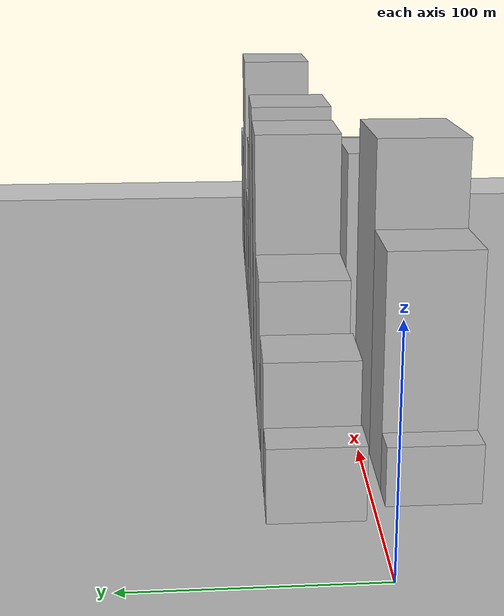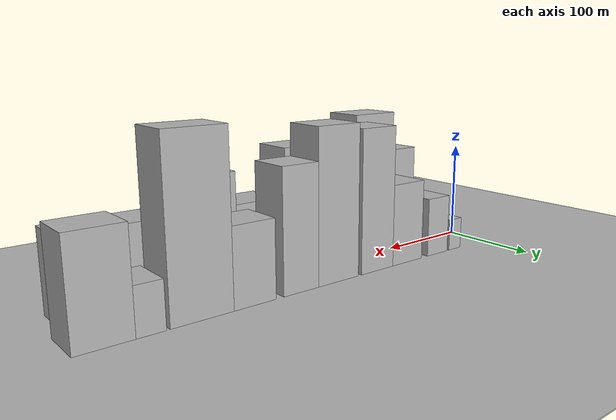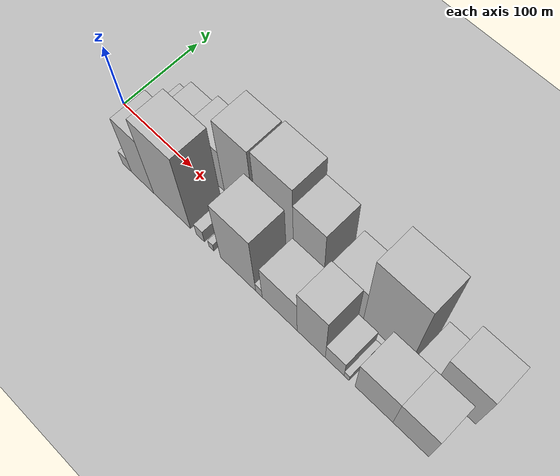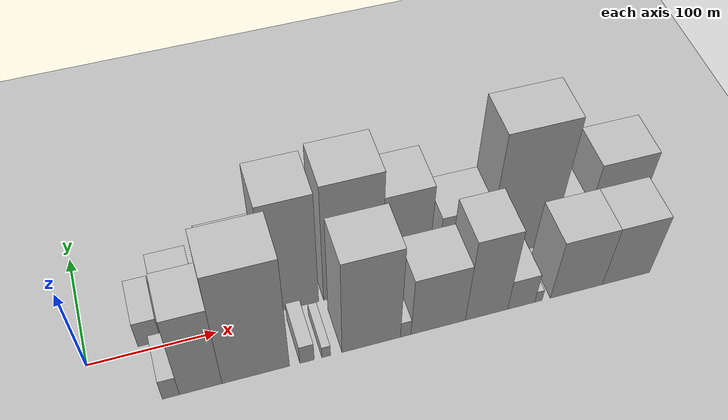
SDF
<?xml version="1.0" encoding="utf-8"?>

<sdf version="1.6">

   <world name="default">

      <gui fullscreen="0">

         <camera name="user_camera">

            <pose>-15 0 4.57585 0 0 0</pose>

            <view_controller>orbit</view_controller>

         </camera>

      </gui>

      <scene>

         <sky>

           <clouds>

             <speed>12</speed>

           </clouds>

         </sky>

         <ambient>0.4 0.4 0.4 1</ambient>

         <background>0.7 0.7 0.7 1</background>

         <shadows>1</shadows>

      </scene>

      <gravity>0 0 -9.8066</gravity>

      <magnetic_field>6e-06 2.3e-05 -4.2e-05</magnetic_field>

      <physics default="0" name="default_physics" type="ode">

         <ode>

            <solver>

               <type>quick</type>

               <iters>10</iters>

               <sor>1.0</sor>

               <use_dynamic_moi_rescaling>0</use_dynamic_moi_rescaling>

            </solver>

            <constraints>

               <cfm>0</cfm>

               <erp>0.2</erp>

               <contact_max_correcting_vel>100</contact_max_correcting_vel>

               <contact_surface_layer>0.001</contact_surface_layer>

            </constraints>

         </ode>

         <max_step_size>0.004</max_step_size>

         <real_time_factor>1</real_time_factor>

         <real_time_update_rate>250</real_time_update_rate>

      </physics>

      <light name="sun" type="directional">

         <cast_shadows>1</cast_shadows>

         <pose>0 0 10 0 0 0</pose>

         <diffuse>0.8 0.8 0.8 1</diffuse>

         <specular>0.2 0.2 0.2 1</specular>

         <attenuation>

            <range>1000</range>

            <constant>0.9</constant>

            <linear>0.01</linear>

            <quadratic>0.001</quadratic>

         </attenuation>

         <direction>-0.5 0.1 -0.9</direction>

      </light>

      <include>

         <name>ground_plane_1</name>

         <uri>model://HANNAS_ground_plane</uri>

         <pose>0 0 0  0 0 0</pose>

      </include>

      <include>

         <name>ground_plane_2</name>

         <uri>model://HANNAS_ground_plane</uri>

         <pose>100 0 0  0 0 0</pose>

      </include>

      <model name="building_1">

         <static>1</static>

         <pose frame="">49.0058 24.5000 0 0.000000 0.000000 1.570796</pose>

         <link name="link">

            <pose frame="">0 0 16.50 0 0 0</pose>

            <collision name="collision">

               <geometry>

                  <box>

                     <size>40.0000 18.0115 33.0000</size>

                  </box>

               </geometry>

               <max_contacts>10</max_contacts>

               <surface>

                  <contact>

                     <ode/>

                  </contact>

                  <bounce/>

                  <friction>

                     <torsional>

                        <ode/>

                     </torsional>

                     <ode/>

                  </friction>

               </surface>

            </collision>

            <visual name="visual">

               <cast_shadows>0</cast_shadows>

               <geometry>

                  <box>

                     <size>40.0000 18.0115 33.0000</size>

                  </box>

               </geometry>

               <material>

                  <script>

                     <uri>model://HANNAS_wall/materials/scripts</uri>

                     <uri>model://HANNAS_wall/materials/textures</uri>

                     <name>vrc/HANNAS_wall</name>

                  </script>

               </material>

            </visual>

            <self_collide>0</self_collide>

            <enable_wind>0</enable_wind>

            <kinematic>0</kinematic>

         </link>

      </model>

      <model name="building_2">

         <static>1</static>

         <pose frame="">76.2000 24.5000 0 0.000000 0.000000 1.570796</pose>

         <link name="link">

            <pose frame="">0 0 30.00 0 0 0</pose>

            <collision name="collision">

               <geometry>

                  <box>

                     <size>40.0000 30.3770 60.0000</size>

                  </box>

               </geometry>

               <max_contacts>10</max_contacts>

               <surface>

                  <contact>

                     <ode/>

                  </contact>

                  <bounce/>

                  <friction>

                     <torsional>

                        <ode/>

                     </torsional>

                     <ode/>

                  </friction>

               </surface>

            </collision>

            <visual name="visual">

               <cast_shadows>0</cast_shadows>

               <geometry>

                  <box>

                     <size>40.0000 30.3770 60.0000</size>

                  </box>

               </geometry>

               <material>

                  <script>

                     <uri>model://HANNAS_wall/materials/scripts</uri>

                     <uri>model://HANNAS_wall/materials/textures</uri>

                     <name>vrc/HANNAS_wall</name>

                  </script>

               </material>

            </visual>

            <self_collide>0</self_collide>

            <enable_wind>0</enable_wind>

            <kinematic>0</kinematic>

         </link>

      </model>

      <model name="building_3">

         <static>1</static>

         <pose frame="">120.9270 24.5000 0 0.000000 0.000000 1.570796</pose>

         <link name="link">

            <pose frame="">0 0 40.50 0 0 0</pose>

            <collision name="collision">

               <geometry>

                  <box>

                     <size>40.0000 41.0769 81.0000</size>

                  </box>

               </geometry>

               <max_contacts>10</max_contacts>

               <surface>

                  <contact>

                     <ode/>

                  </contact>

                  <bounce/>

                  <friction>

                     <torsional>

                        <ode/>

                     </torsional>

                     <ode/>

                  </friction>

               </surface>

            </collision>

            <visual name="visual">

               <cast_shadows>0</cast_shadows>

               <geometry>

                  <box>

                     <size>40.0000 41.0769 81.0000</size>

                  </box>

               </geometry>

               <material>

                  <script>

                     <uri>model://HANNAS_wall/materials/scripts</uri>

                     <uri>model://HANNAS_wall/materials/textures</uri>

                     <name>vrc/HANNAS_wall</name>

                  </script>

               </material>

            </visual>

            <self_collide>0</self_collide>

            <enable_wind>0</enable_wind>

            <kinematic>0</kinematic>

         </link>

      </model>

      <model name="building_4">

         <static>1</static>

         <pose frame="">162.2390 24.5000 0 0.000000 0.000000 1.570796</pose>

         <link name="link">

            <pose frame="">0 0 69.00 0 0 0</pose>

            <collision name="collision">

               <geometry>

                  <box>

                     <size>40.0000 41.5473 138.0000</size>

                  </box>

               </geometry>

               <max_contacts>10</max_contacts>

               <surface>

                  <contact>

                     <ode/>

                  </contact>

                  <bounce/>

                  <friction>

                     <torsional>

                        <ode/>

                     </torsional>

                     <ode/>

                  </friction>

               </surface>

            </collision>

            <visual name="visual">

               <cast_shadows>0</cast_shadows>

               <geometry>

                  <box>

                     <size>40.0000 41.5473 138.0000</size>

                  </box>

               </geometry>

               <material>

                  <script>

                     <uri>model://HANNAS_wall/materials/scripts</uri>

                     <uri>model://HANNAS_wall/materials/textures</uri>

                     <name>vrc/HANNAS_wall</name>

                  </script>

               </material>

            </visual>

            <self_collide>0</self_collide>

            <enable_wind>0</enable_wind>

            <kinematic>0</kinematic>

         </link>

      </model>

      <model name="building_5">

         <static>1</static>

         <pose frame="">210.8646 24.5000 0 0.000000 0.000000 1.570796</pose>

         <link name="link">

            <pose frame="">0 0 72.00 0 0 0</pose>

            <collision name="collision">

               <geometry>

                  <box>

                     <size>40.0000 47.7039 144.0000</size>

                  </box>

               </geometry>

               <max_contacts>10</max_contacts>

               <surface>

                  <contact>

                     <ode/>

                  </contact>

                  <bounce/>

                  <friction>

                     <torsional>

                        <ode/>

                     </torsional>

                     <ode/>

                  </friction>

               </surface>

            </collision>

            <visual name="visual">

               <cast_shadows>0</cast_shadows>

               <geometry>

                  <box>

                     <size>40.0000 47.7039 144.0000</size>

                  </box>

               </geometry>

               <material>

                  <script>

                     <uri>model://HANNAS_wall/materials/scripts</uri>

                     <uri>model://HANNAS_wall/materials/textures</uri>

                     <name>vrc/HANNAS_wall</name>

                  </script>

               </material>

            </visual>

            <self_collide>0</self_collide>

            <enable_wind>0</enable_wind>

            <kinematic>0</kinematic>

         </link>

      </model>

      <model name="building_6">

         <static>1</static>

         <pose frame="">253.9870 24.5000 0 0.000000 0.000000 1.570796</pose>

         <link name="link">

            <pose frame="">0 0 57.00 0 0 0</pose>

            <collision name="collision">

               <geometry>

                  <box>

                     <size>40.0000 38.5410 114.0000</size>

                  </box>

               </geometry>

               <max_contacts>10</max_contacts>

               <surface>

                  <contact>

                     <ode/>

                  </contact>

                  <bounce/>

                  <friction>

                     <torsional>

                        <ode/>

                     </torsional>

                     <ode/>

                  </friction>

               </surface>

            </collision>

            <visual name="visual">

               <cast_shadows>0</cast_shadows>

               <geometry>

                  <box>

                     <size>40.0000 38.5410 114.0000</size>

                  </box>

               </geometry>

               <material>

                  <script>

                     <uri>model://HANNAS_wall/materials/scripts</uri>

                     <uri>model://HANNAS_wall/materials/textures</uri>

                     <name>vrc/HANNAS_wall</name>

                  </script>

               </material>

            </visual>

            <self_collide>0</self_collide>

            <enable_wind>0</enable_wind>

            <kinematic>0</kinematic>

         </link>

      </model>

      <model name="building_7">

         <static>1</static>

         <pose frame="">302.1869 24.5000 0 0.000000 0.000000 1.570796</pose>

         <link name="link">

            <pose frame="">0 0 36.00 0 0 0</pose>

            <collision name="collision">

               <geometry>

                  <box>

                     <size>40.0000 41.8587 72.0000</size>

                  </box>

               </geometry>

               <max_contacts>10</max_contacts>

               <surface>

                  <contact>

                     <ode/>

                  </contact>

                  <bounce/>

                  <friction>

                     <torsional>

                        <ode/>

                     </torsional>

                     <ode/>

                  </friction>

               </surface>

            </collision>

            <visual name="visual">

               <cast_shadows>0</cast_shadows>

               <geometry>

                  <box>

                     <size>40.0000 41.8587 72.0000</size>

                  </box>

               </geometry>

               <material>

                  <script>

                     <uri>model://HANNAS_wall/materials/scripts</uri>

                     <uri>model://HANNAS_wall/materials/textures</uri>

                     <name>vrc/HANNAS_wall</name>

                  </script>

               </material>

            </visual>

            <self_collide>0</self_collide>

            <enable_wind>0</enable_wind>

            <kinematic>0</kinematic>

         </link>

      </model>

      <model name="building_8">

         <static>1</static>

         <pose frame="">351.6447 24.5000 0 0.000000 0.000000 1.570796</pose>

         <link name="link">

            <pose frame="">0 0 76.50 0 0 0</pose>

            <collision name="collision">

               <geometry>

                  <box>

                     <size>40.0000 57.0570 153.0000</size>

                  </box>

               </geometry>

               <max_contacts>10</max_contacts>

               <surface>

                  <contact>

                     <ode/>

                  </contact>

                  <bounce/>

                  <friction>

                     <torsional>

                        <ode/>

                     </torsional>

                     <ode/>

                  </friction>

               </surface>

            </collision>

            <visual name="visual">

               <cast_shadows>0</cast_shadows>

               <geometry>

                  <box>

                     <size>40.0000 57.0570 153.0000</size>

                  </box>

               </geometry>

               <material>

                  <script>

                     <uri>model://HANNAS_wall/materials/scripts</uri>

                     <uri>model://HANNAS_wall/materials/textures</uri>

                     <name>vrc/HANNAS_wall</name>

                  </script>

               </material>

            </visual>

            <self_collide>0</self_collide>

            <enable_wind>0</enable_wind>

            <kinematic>0</kinematic>

         </link>

      </model>

      <model name="building_9">

         <static>1</static>

         <pose frame="">395.4825 24.5000 0 0.000000 0.000000 1.570796</pose>

         <link name="link">

            <pose frame="">0 0 21.00 0 0 0</pose>

            <collision name="collision">

               <geometry>

                  <box>

                     <size>40.0000 24.6185 42.0000</size>

                  </box>

               </geometry>

               <max_contacts>10</max_contacts>

               <surface>

                  <contact>

                     <ode/>

                  </contact>

                  <bounce/>

                  <friction>

                     <torsional>

                        <ode/>

                     </torsional>

                     <ode/>

                  </friction>

               </surface>

            </collision>

            <visual name="visual">

               <cast_shadows>0</cast_shadows>

               <geometry>

                  <box>

                     <size>40.0000 24.6185 42.0000</size>

                  </box>

               </geometry>

               <material>

                  <script>

                     <uri>model://HANNAS_wall/materials/scripts</uri>

                     <uri>model://HANNAS_wall/materials/textures</uri>

                     <name>vrc/HANNAS_wall</name>

                  </script>

               </material>

            </visual>

            <self_collide>0</self_collide>

            <enable_wind>0</enable_wind>

            <kinematic>0</kinematic>

         </link>

      </model>

      <model name="building_10">

         <static>1</static>

         <pose frame="">431.6448 24.5000 0 0.000000 0.000000 1.570796</pose>

         <link name="link">

            <pose frame="">0 0 45.00 0 0 0</pose>

            <collision name="collision">

               <geometry>

                  <box>

                     <size>40.0000 47.7062 90.0000</size>

                  </box>

               </geometry>

               <max_contacts>10</max_contacts>

               <surface>

                  <contact>

                     <ode/>

                  </contact>

                  <bounce/>

                  <friction>

                     <torsional>

                        <ode/>

                     </torsional>

                     <ode/>

                  </friction>

               </surface>

            </collision>

            <visual name="visual">

               <cast_shadows>0</cast_shadows>

               <geometry>

                  <box>

                     <size>40.0000 47.7062 90.0000</size>

                  </box>

               </geometry>

               <material>

                  <script>

                     <uri>model://HANNAS_wall/materials/scripts</uri>

                     <uri>model://HANNAS_wall/materials/textures</uri>

                     <name>vrc/HANNAS_wall</name>

                  </script>

               </material>

            </visual>

            <self_collide>0</self_collide>

            <enable_wind>0</enable_wind>

            <kinematic>0</kinematic>

         </link>

      </model>

      <model name="building_11">

         <static>1</static>

         <pose frame="">56.3744 -24.5000 0 0.000000 0.000000 1.570796</pose>

         <link name="link">

            <pose frame="">0 0 13.50 0 0 0</pose>

            <collision name="collision">

               <geometry>

                  <box>

                     <size>40.0000 12.7488 27.0000</size>

                  </box>

               </geometry>

               <max_contacts>10</max_contacts>

               <surface>

                  <contact>

                     <ode/>

                  </contact>

                  <bounce/>

                  <friction>

                     <torsional>

                        <ode/>

                     </torsional>

                     <ode/>

                  </friction>

               </surface>

            </collision>

            <visual name="visual">

               <cast_shadows>0</cast_shadows>

               <geometry>

                  <box>

                     <size>40.0000 12.7488 27.0000</size>

                  </box>

               </geometry>

               <material>

                  <script>

                     <uri>model://HANNAS_wall/materials/scripts</uri>

                     <uri>model://HANNAS_wall/materials/textures</uri>

                     <name>vrc/HANNAS_wall</name>

                  </script>

               </material>

            </visual>

            <self_collide>0</self_collide>

            <enable_wind>0</enable_wind>

            <kinematic>0</kinematic>

         </link>

      </model>

      <model name="building_12">

         <static>1</static>

         <pose frame="">78.8677 -24.5000 0 0.000000 0.000000 1.570796</pose>

         <link name="link">

            <pose frame="">0 0 52.50 0 0 0</pose>

            <collision name="collision">

               <geometry>

                  <box>

                     <size>40.0000 32.2377 105.0000</size>

                  </box>

               </geometry>

               <max_contacts>10</max_contacts>

               <surface>

                  <contact>

                     <ode/>

                  </contact>

                  <bounce/>

                  <friction>

                     <torsional>

                        <ode/>

                     </torsional>

                     <ode/>

                  </friction>

               </surface>

            </collision>

            <visual name="visual">

               <cast_shadows>0</cast_shadows>

               <geometry>

                  <box>

                     <size>40.0000 32.2377 105.0000</size>

                  </box>

               </geometry>

               <material>

                  <script>

                     <uri>model://HANNAS_wall/materials/scripts</uri>

                     <uri>model://HANNAS_wall/materials/textures</uri>

                     <name>vrc/HANNAS_wall</name>

                  </script>

               </material>

            </visual>

            <self_collide>0</self_collide>

            <enable_wind>0</enable_wind>

            <kinematic>0</kinematic>

         </link>

      </model>

      <model name="building_13">

         <static>1</static>

         <pose frame="">120.9228 -24.5000 0 0.000000 0.000000 1.570796</pose>

         <link name="link">

            <pose frame="">0 0 72.00 0 0 0</pose>

            <collision name="collision">

               <geometry>

                  <box>

                     <size>40.0000 51.8724 144.0000</size>

                  </box>

               </geometry>

               <max_contacts>10</max_contacts>

               <surface>

                  <contact>

                     <ode/>

                  </contact>

                  <bounce/>

                  <friction>

                     <torsional>

                        <ode/>

                     </torsional>

                     <ode/>

                  </friction>

               </surface>

            </collision>

            <visual name="visual">

               <cast_shadows>0</cast_shadows>

               <geometry>

                  <box>

                     <size>40.0000 51.8724 144.0000</size>

                  </box>

               </geometry>

               <material>

                  <script>

                     <uri>model://HANNAS_wall/materials/scripts</uri>

                     <uri>model://HANNAS_wall/materials/textures</uri>

                     <name>vrc/HANNAS_wall</name>

                  </script>

               </material>

            </visual>

            <self_collide>0</self_collide>

            <enable_wind>0</enable_wind>

            <kinematic>0</kinematic>

         </link>

      </model>

      <model name="building_14">

         <static>1</static>

         <pose frame="">160.4725 -24.5000 0 0.000000 0.000000 1.570796</pose>

         <link name="link">

            <pose frame="">0 0 12.00 0 0 0</pose>

            <collision name="collision">

               <geometry>

                  <box>

                     <size>40.0000 11.2270 24.0000</size>

                  </box>

               </geometry>

               <max_contacts>10</max_contacts>

               <surface>

                  <contact>

                     <ode/>

                  </contact>

                  <bounce/>

                  <friction>

                     <torsional>

                        <ode/>

                     </torsional>

                     <ode/>

                  </friction>

               </surface>

            </collision>

            <visual name="visual">

               <cast_shadows>0</cast_shadows>

               <geometry>

                  <box>

                     <size>40.0000 11.2270 24.0000</size>

                  </box>

               </geometry>

               <material>

                  <script>

                     <uri>model://HANNAS_wall/materials/scripts</uri>

                     <uri>model://HANNAS_wall/materials/textures</uri>

                     <name>vrc/HANNAS_wall</name>

                  </script>

               </material>

            </visual>

            <self_collide>0</self_collide>

            <enable_wind>0</enable_wind>

            <kinematic>0</kinematic>

         </link>

      </model>

      <model name="building_15">

         <static>1</static>

         <pose frame="">175.5054 -24.5000 0 0.000000 0.000000 1.570796</pose>

         <link name="link">

            <pose frame="">0 0 7.50 0 0 0</pose>

            <collision name="collision">

               <geometry>

                  <box>

                     <size>40.0000 6.8389 15.0000</size>

                  </box>

               </geometry>

               <max_contacts>10</max_contacts>

               <surface>

                  <contact>

                     <ode/>

                  </contact>

                  <bounce/>

                  <friction>

                     <torsional>

                        <ode/>

                     </torsional>

                     <ode/>

                  </friction>

               </surface>

            </collision>

            <visual name="visual">

               <cast_shadows>0</cast_shadows>

               <geometry>

                  <box>

                     <size>40.0000 6.8389 15.0000</size>

                  </box>

               </geometry>

               <material>

                  <script>

                     <uri>model://HANNAS_wall/materials/scripts</uri>

                     <uri>model://HANNAS_wall/materials/textures</uri>

                     <name>vrc/HANNAS_wall</name>

                  </script>

               </material>

            </visual>

            <self_collide>0</self_collide>

            <enable_wind>0</enable_wind>

            <kinematic>0</kinematic>

         </link>

      </model>

      <model name="building_16">

         <static>1</static>

         <pose frame="">211.2695 -24.5000 0 0.000000 0.000000 1.570796</pose>

         <link name="link">

            <pose frame="">0 0 60.00 0 0 0</pose>

            <collision name="collision">

               <geometry>

                  <box>

                     <size>40.0000 46.6893 120.0000</size>

                  </box>

               </geometry>

               <max_contacts>10</max_contacts>

               <surface>

                  <contact>

                     <ode/>

                  </contact>

                  <bounce/>

                  <friction>

                     <torsional>

                        <ode/>

                     </torsional>

                     <ode/>

                  </friction>

               </surface>

            </collision>

            <visual name="visual">

               <cast_shadows>0</cast_shadows>

               <geometry>

                  <box>

                     <size>40.0000 46.6893 120.0000</size>

                  </box>

               </geometry>

               <material>

                  <script>

                     <uri>model://HANNAS_wall/materials/scripts</uri>

                     <uri>model://HANNAS_wall/materials/textures</uri>

                     <name>vrc/HANNAS_wall</name>

                  </script>

               </material>

            </visual>

            <self_collide>0</self_collide>

            <enable_wind>0</enable_wind>

            <kinematic>0</kinematic>

         </link>

      </model>

      <model name="building_17">

         <static>1</static>

         <pose frame="">238.8695 -24.5000 0 0.000000 0.000000 1.570796</pose>

         <link name="link">

            <pose frame="">0 0 10.50 0 0 0</pose>

            <collision name="collision">

               <geometry>

                  <box>

                     <size>40.0000 8.5107 21.0000</size>

                  </box>

               </geometry>

               <max_contacts>10</max_contacts>

               <surface>

                  <contact>

                     <ode/>

                  </contact>

                  <bounce/>

                  <friction>

                     <torsional>

                        <ode/>

                     </torsional>

                     <ode/>

                  </friction>

               </surface>

            </collision>

            <visual name="visual">

               <cast_shadows>0</cast_shadows>

               <geometry>

                  <box>

                     <size>40.0000 8.5107 21.0000</size>

                  </box>

               </geometry>

               <material>

                  <script>

                     <uri>model://HANNAS_wall/materials/scripts</uri>

                     <uri>model://HANNAS_wall/materials/textures</uri>

                     <name>vrc/HANNAS_wall</name>

                  </script>

               </material>

            </visual>

            <self_collide>0</self_collide>

            <enable_wind>0</enable_wind>

            <kinematic>0</kinematic>

         </link>

      </model>

      <model name="building_18">

         <static>1</static>

         <pose frame="">265.4014 -24.5000 0 0.000000 0.000000 1.570796</pose>

         <link name="link">

            <pose frame="">0 0 37.50 0 0 0</pose>

            <collision name="collision">

               <geometry>

                  <box>

                     <size>40.0000 44.5532 75.0000</size>

                  </box>

               </geometry>

               <max_contacts>10</max_contacts>

               <surface>

                  <contact>

                     <ode/>

                  </contact>

                  <bounce/>

                  <friction>

                     <torsional>

                        <ode/>

                     </torsional>

                     <ode/>

                  </friction>

               </surface>

            </collision>

            <visual name="visual">

               <cast_shadows>0</cast_shadows>

               <geometry>

                  <box>

                     <size>40.0000 44.5532 75.0000</size>

                  </box>

               </geometry>

               <material>

                  <script>

                     <uri>model://HANNAS_wall/materials/scripts</uri>

                     <uri>model://HANNAS_wall/materials/textures</uri>

                     <name>vrc/HANNAS_wall</name>

                  </script>

               </material>

            </visual>

            <self_collide>0</self_collide>

            <enable_wind>0</enable_wind>

            <kinematic>0</kinematic>

         </link>

      </model>

      <model name="building_19">

         <static>1</static>

         <pose frame="">305.2588 -24.5000 0 0.000000 0.000000 1.570796</pose>

         <link name="link">

            <pose frame="">0 0 52.50 0 0 0</pose>

            <collision name="collision">

               <geometry>

                  <box>

                     <size>40.0000 35.1615 105.0000</size>

                  </box>

               </geometry>

               <max_contacts>10</max_contacts>

               <surface>

                  <contact>

                     <ode/>

                  </contact>

                  <bounce/>

                  <friction>

                     <torsional>

                        <ode/>

                     </torsional>

                     <ode/>

                  </friction>

               </surface>

            </collision>

            <visual name="visual">

               <cast_shadows>0</cast_shadows>

               <geometry>

                  <box>

                     <size>40.0000 35.1615 105.0000</size>

                  </box>

               </geometry>

               <material>

                  <script>

                     <uri>model://HANNAS_wall/materials/scripts</uri>

                     <uri>model://HANNAS_wall/materials/textures</uri>

                     <name>vrc/HANNAS_wall</name>

                  </script>

               </material>

            </visual>

            <self_collide>0</self_collide>

            <enable_wind>0</enable_wind>

            <kinematic>0</kinematic>

         </link>

      </model>

      <model name="building_20">

         <static>1</static>

         <pose frame="">334.2833 -24.5000 0 0.000000 0.000000 1.570796</pose>

         <link name="link">

            <pose frame="">0 0 19.50 0 0 0</pose>

            <collision name="collision">

               <geometry>

                  <box>

                     <size>40.0000 22.8875 39.0000</size>

                  </box>

               </geometry>

               <max_contacts>10</max_contacts>

               <surface>

                  <contact>

                     <ode/>

                  </contact>

                  <bounce/>

                  <friction>

                     <torsional>

                        <ode/>

                     </torsional>

                     <ode/>

                  </friction>

               </surface>

            </collision>

            <visual name="visual">

               <cast_shadows>0</cast_shadows>

               <geometry>

                  <box>

                     <size>40.0000 22.8875 39.0000</size>

                  </box>

               </geometry>

               <material>

                  <script>

                     <uri>model://HANNAS_wall/materials/scripts</uri>

                     <uri>model://HANNAS_wall/materials/textures</uri>

                     <name>vrc/HANNAS_wall</name>

                  </script>

               </material>

            </visual>

            <self_collide>0</self_collide>

            <enable_wind>0</enable_wind>

            <kinematic>0</kinematic>

         </link>

      </model>

      <model name="building_21">

         <static>1</static>

         <pose frame="">348.8430 -24.5000 0 0.000000 0.000000 1.570796</pose>

         <link name="link">

            <pose frame="">0 0 7.50 0 0 0</pose>

            <collision name="collision">

               <geometry>

                  <box>

                     <size>40.0000 6.2320 15.0000</size>

                  </box>

               </geometry>

               <max_contacts>10</max_contacts>

               <surface>

                  <contact>

                     <ode/>

                  </contact>

                  <bounce/>

                  <friction>

                     <torsional>

                        <ode/>

                     </torsional>

                     <ode/>

                  </friction>

               </surface>

            </collision>

            <visual name="visual">

               <cast_shadows>0</cast_shadows>

               <geometry>

                  <box>

                     <size>40.0000 6.2320 15.0000</size>

                  </box>

               </geometry>

               <material>

                  <script>

                     <uri>model://HANNAS_wall/materials/scripts</uri>

                     <uri>model://HANNAS_wall/materials/textures</uri>

                     <name>vrc/HANNAS_wall</name>

                  </script>

               </material>

            </visual>

            <self_collide>0</self_collide>

            <enable_wind>0</enable_wind>

            <kinematic>0</kinematic>

         </link>

      </model>

      <model name="building_22">

         <static>1</static>

         <pose frame="">381.3250 -24.5000 0 0.000000 0.000000 1.570796</pose>

         <link name="link">

            <pose frame="">0 0 37.50 0 0 0</pose>

            <collision name="collision">

               <geometry>

                  <box>

                     <size>40.0000 44.7321 75.0000</size>

                  </box>

               </geometry>

               <max_contacts>10</max_contacts>

               <surface>

                  <contact>

                     <ode/>

                  </contact>

                  <bounce/>

                  <friction>

                     <torsional>

                        <ode/>

                     </torsional>

                     <ode/>

                  </friction>

               </surface>

            </collision>

            <visual name="visual">

               <cast_shadows>0</cast_shadows>

               <geometry>

                  <box>

                     <size>40.0000 44.7321 75.0000</size>

                  </box>

               </geometry>

               <material>

                  <script>

                     <uri>model://HANNAS_wall/materials/scripts</uri>

                     <uri>model://HANNAS_wall/materials/textures</uri>

                     <name>vrc/HANNAS_wall</name>

                  </script>

               </material>

            </visual>

            <self_collide>0</self_collide>

            <enable_wind>0</enable_wind>

            <kinematic>0</kinematic>

         </link>

      </model>

      <model name="building_23">

         <static>1</static>

         <pose frame="">424.2889 -24.5000 0 0.000000 0.000000 1.570796</pose>

         <link name="link">

            <pose frame="">0 0 37.50 0 0 0</pose>

            <collision name="collision">

               <geometry>

                  <box>

                     <size>40.0000 41.1956 75.0000</size>

                  </box>

               </geometry>

               <max_contacts>10</max_contacts>

               <surface>

                  <contact>

                     <ode/>

                  </contact>

                  <bounce/>

                  <friction>

                     <torsional>

                        <ode/>

                     </torsional>

                     <ode/>

                  </friction>

               </surface>

            </collision>

            <visual name="visual">

               <cast_shadows>0</cast_shadows>

               <geometry>

                  <box>

                     <size>40.0000 41.1956 75.0000</size>

                  </box>

               </geometry>

               <material>

                  <script>

                     <uri>model://HANNAS_wall/materials/scripts</uri>

                     <uri>model://HANNAS_wall/materials/textures</uri>

                     <name>vrc/HANNAS_wall</name>

                  </script>

               </material>

            </visual>

            <self_collide>0</self_collide>

            <enable_wind>0</enable_wind>

            <kinematic>0</kinematic>

         </link>

      </model>

   </world>

</sdf>

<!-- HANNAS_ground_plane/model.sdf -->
<sdf version="1.4">
<model name="HANNAS_ground_plane">
  <static>true</static>
    <link name="link">
      <collision name="collision">
        <geometry>
          <plane>
            <normal>0 0 1</normal>
            <size>1000 1000</size>
          </plane>
        </geometry>
        <surface>
          <friction>
            <ode>
              <mu>100</mu>
              <mu2>50</mu2>
            </ode>
          </friction>
        </surface>
      </collision>
      <visual name="visual">
        <cast_shadows>false</cast_shadows>
        <geometry>
          <plane>
            <normal>0 0 1</normal>
            <size>1000 1000</size>
          </plane>
        </geometry>
        <material>
          <script>
            <uri>model://HANNAS_ground_plane/materials/scripts/HANNAS_ground_plane.material</uri>
	    <uri>model://HANNAS_ground_plane/materials/textures</uri>
            <name>HANNASGroundPlane/Image</name>
          </script>
        </material>
      </visual>
    </link>
  </model>
</sdf>
